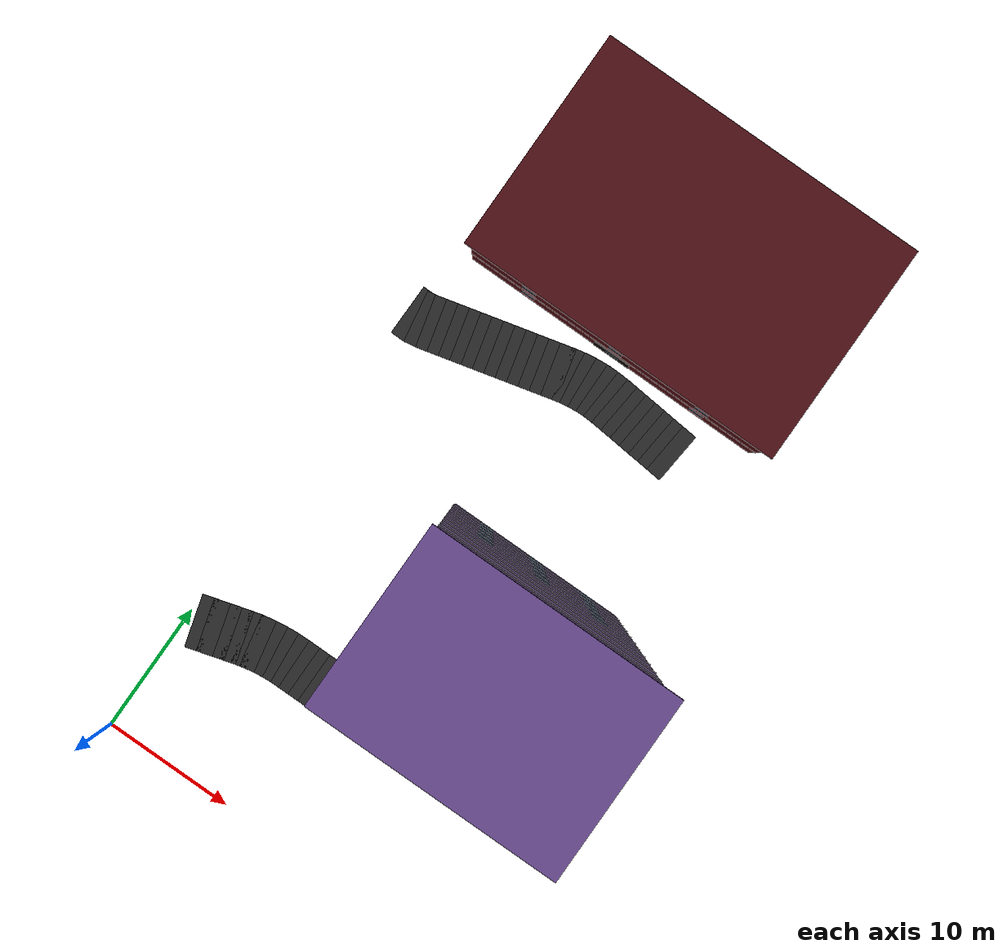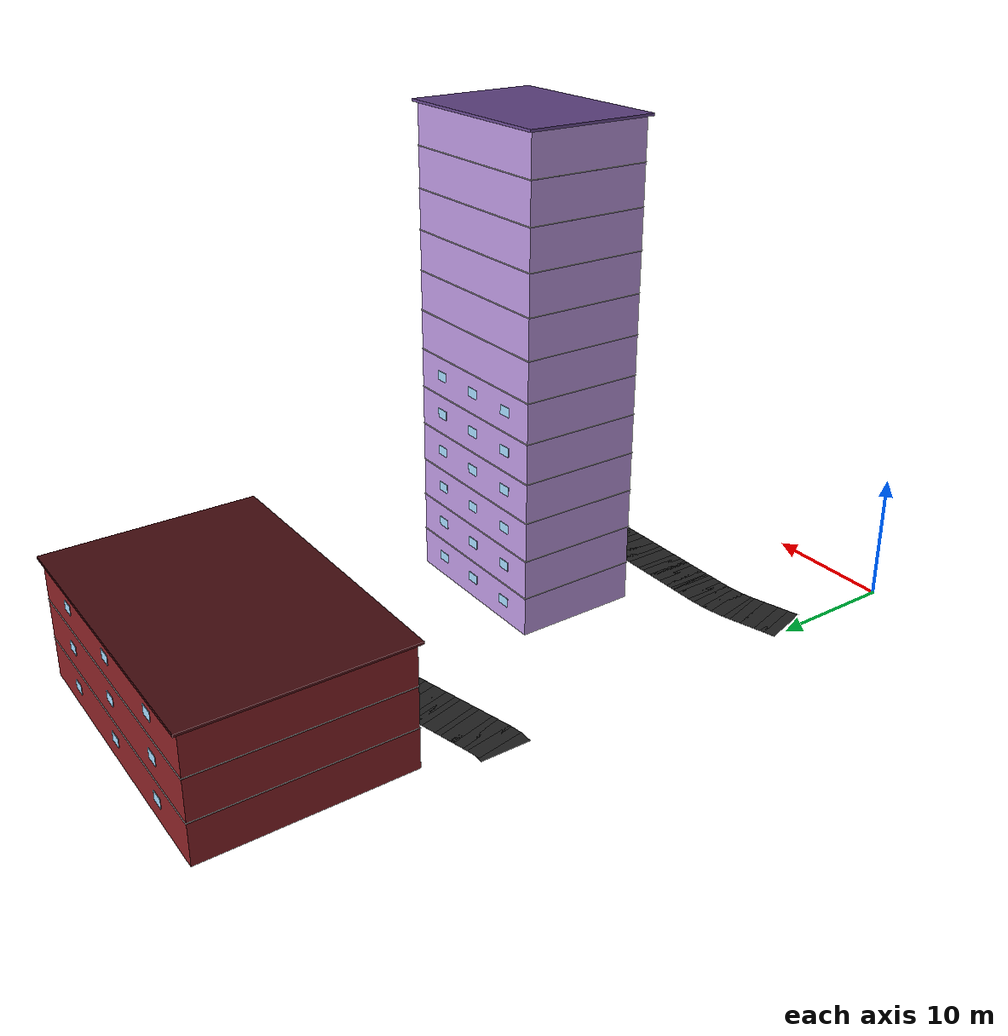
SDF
<sdf version="1.7">
 <world name="campus_delivery">
  <model name="campus_roads">
   <static>true</static>
   <link name="north_campus_loop_0150">
    <pose>21.571 38.790 0.002 0 0 3.048116</pose>
    <visual name="visual">
     <geometry><box><size>1.212 4.000 0.004</size></box></geometry>
     <material><ambient>0.160 0.160 0.160 1.000</ambient><diffuse>0.160 0.160 0.160 1.000</diffuse></material>
    </visual>
   </link>
   <link name="north_campus_loop_0151">
    <pose>20.712 38.871 0.002 0 0 3.048116</pose>
    <visual name="visual">
     <geometry><box><size>1.212 4.000 0.004</size></box></geometry>
     <material><ambient>0.160 0.160 0.160 1.000</ambient><diffuse>0.160 0.160 0.160 1.000</diffuse></material>
    </visual>
   </link>
   <link name="north_campus_loop_0152">
    <pose>19.854 38.951 0.002 0 0 3.048116</pose>
    <visual name="visual">
     <geometry><box><size>1.212 4.000 0.004</size></box></geometry>
     <material><ambient>0.160 0.160 0.160 1.000</ambient><diffuse>0.160 0.160 0.160 1.000</diffuse></material>
    </visual>
   </link>
   <link name="north_campus_loop_0153">
    <pose>18.996 39.032 0.002 0 0 3.048116</pose>
    <visual name="visual">
     <geometry><box><size>1.212 4.000 0.004</size></box></geometry>
     <material><ambient>0.160 0.160 0.160 1.000</ambient><diffuse>0.160 0.160 0.160 1.000</diffuse></material>
    </visual>
   </link>
   <link name="north_campus_loop_0154">
    <pose>18.137 39.112 0.002 0 0 3.048116</pose>
    <visual name="visual">
     <geometry><box><size>1.212 4.000 0.004</size></box></geometry>
     <material><ambient>0.160 0.160 0.160 1.000</ambient><diffuse>0.160 0.160 0.160 1.000</diffuse></material>
    </visual>
   </link>
   <link name="north_campus_loop_0155">
    <pose>17.279 39.193 0.002 0 0 3.048116</pose>
    <visual name="visual">
     <geometry><box><size>1.212 4.000 0.004</size></box></geometry>
     <material><ambient>0.160 0.160 0.160 1.000</ambient><diffuse>0.160 0.160 0.160 1.000</diffuse></material>
    </visual>
   </link>
   <link name="north_campus_loop_0156">
    <pose>16.420 39.273 0.002 0 0 3.048116</pose>
    <visual name="visual">
     <geometry><box><size>1.212 4.000 0.004</size></box></geometry>
     <material><ambient>0.160 0.160 0.160 1.000</ambient><diffuse>0.160 0.160 0.160 1.000</diffuse></material>
    </visual>
   </link>
   <link name="north_campus_loop_0157">
    <pose>15.594 39.337 0.002 0 0 3.081496</pose>
    <visual name="visual">
     <geometry><box><size>1.146 4.000 0.004</size></box></geometry>
     <material><ambient>0.160 0.160 0.160 1.000</ambient><diffuse>0.160 0.160 0.160 1.000</diffuse></material>
    </visual>
   </link>
   <link name="north_campus_loop_0158">
    <pose>14.802 39.358 0.002 0 0 -3.134080</pose>
    <visual name="visual">
     <geometry><box><size>1.140 4.000 0.004</size></box></geometry>
     <material><ambient>0.160 0.160 0.160 1.000</ambient><diffuse>0.160 0.160 0.160 1.000</diffuse></material>
    </visual>
   </link>
   <link name="north_campus_loop_0159">
    <pose>14.013 39.325 0.002 0 0 -3.065842</pose>
    <visual name="visual">
     <geometry><box><size>1.139 4.000 0.004</size></box></geometry>
     <material><ambient>0.160 0.160 0.160 1.000</ambient><diffuse>0.160 0.160 0.160 1.000</diffuse></material>
    </visual>
   </link>
   <link name="north_campus_loop_0160">
    <pose>13.229 39.239 0.002 0 0 -2.997603</pose>
    <visual name="visual">
     <geometry><box><size>1.140 4.000 0.004</size></box></geometry>
     <material><ambient>0.160 0.160 0.160 1.000</ambient><diffuse>0.160 0.160 0.160 1.000</diffuse></material>
    </visual>
   </link>
   <link name="north_campus_loop_0161">
    <pose>12.449 39.099 0.002 0 0 -2.929994</pose>
    <visual name="visual">
     <geometry><box><size>1.146 4.000 0.004</size></box></geometry>
     <material><ambient>0.160 0.160 0.160 1.000</ambient><diffuse>0.160 0.160 0.160 1.000</diffuse></material>
    </visual>
   </link>
   <link name="north_campus_loop_0162">
    <pose>11.638 38.910 0.002 0 0 -2.896614</pose>
    <visual name="visual">
     <geometry><box><size>1.219 4.000 0.004</size></box></geometry>
     <material><ambient>0.160 0.160 0.160 1.000</ambient><diffuse>0.160 0.160 0.160 1.000</diffuse></material>
    </visual>
   </link>
   <link name="north_campus_loop_0163">
    <pose>10.795 38.699 0.002 0 0 -2.896614</pose>
    <visual name="visual">
     <geometry><box><size>1.219 4.000 0.004</size></box></geometry>
     <material><ambient>0.160 0.160 0.160 1.000</ambient><diffuse>0.160 0.160 0.160 1.000</diffuse></material>
    </visual>
   </link>
   <link name="north_campus_loop_0164">
    <pose>9.952 38.488 0.002 0 0 -2.896614</pose>
    <visual name="visual">
     <geometry><box><size>1.219 4.000 0.004</size></box></geometry>
     <material><ambient>0.160 0.160 0.160 1.000</ambient><diffuse>0.160 0.160 0.160 1.000</diffuse></material>
    </visual>
   </link>
   <link name="north_campus_loop_0165">
    <pose>9.108 38.277 0.002 0 0 -2.896614</pose>
    <visual name="visual">
     <geometry><box><size>1.219 4.000 0.004</size></box></geometry>
     <material><ambient>0.160 0.160 0.160 1.000</ambient><diffuse>0.160 0.160 0.160 1.000</diffuse></material>
    </visual>
   </link>
   <link name="north_campus_loop_0166">
    <pose>8.265 38.066 0.002 0 0 -2.896614</pose>
    <visual name="visual">
     <geometry><box><size>1.219 4.000 0.004</size></box></geometry>
     <material><ambient>0.160 0.160 0.160 1.000</ambient><diffuse>0.160 0.160 0.160 1.000</diffuse></material>
    </visual>
   </link>
   <link name="north_campus_loop_0167">
    <pose>7.422 37.855 0.002 0 0 -2.896614</pose>
    <visual name="visual">
     <geometry><box><size>1.219 4.000 0.004</size></box></geometry>
     <material><ambient>0.160 0.160 0.160 1.000</ambient><diffuse>0.160 0.160 0.160 1.000</diffuse></material>
    </visual>
   </link>
   <link name="north_campus_loop_0168">
    <pose>6.578 37.645 0.002 0 0 -2.896614</pose>
    <visual name="visual">
     <geometry><box><size>1.219 4.000 0.004</size></box></geometry>
     <material><ambient>0.160 0.160 0.160 1.000</ambient><diffuse>0.160 0.160 0.160 1.000</diffuse></material>
    </visual>
   </link>
   <link name="north_campus_loop_0169">
    <pose>5.735 37.434 0.002 0 0 -2.896614</pose>
    <visual name="visual">
     <geometry><box><size>1.219 4.000 0.004</size></box></geometry>
     <material><ambient>0.160 0.160 0.160 1.000</ambient><diffuse>0.160 0.160 0.160 1.000</diffuse></material>
    </visual>
   </link>
   <link name="north_campus_loop_0170">
    <pose>4.892 37.223 0.002 0 0 -2.896614</pose>
    <visual name="visual">
     <geometry><box><size>1.219 4.000 0.004</size></box></geometry>
     <material><ambient>0.160 0.160 0.160 1.000</ambient><diffuse>0.160 0.160 0.160 1.000</diffuse></material>
    </visual>
   </link>
   <link name="north_campus_loop_0171">
    <pose>4.048 37.012 0.002 0 0 -2.896614</pose>
    <visual name="visual">
     <geometry><box><size>1.219 4.000 0.004</size></box></geometry>
     <material><ambient>0.160 0.160 0.160 1.000</ambient><diffuse>0.160 0.160 0.160 1.000</diffuse></material>
    </visual>
   </link>
   <link name="north_campus_loop_0172">
    <pose>3.205 36.801 0.002 0 0 -2.896614</pose>
    <visual name="visual">
     <geometry><box><size>1.219 4.000 0.004</size></box></geometry>
     <material><ambient>0.160 0.160 0.160 1.000</ambient><diffuse>0.160 0.160 0.160 1.000</diffuse></material>
    </visual>
   </link>
   <link name="north_campus_loop_0173">
    <pose>2.362 36.590 0.002 0 0 -2.896614</pose>
    <visual name="visual">
     <geometry><box><size>1.219 4.000 0.004</size></box></geometry>
     <material><ambient>0.160 0.160 0.160 1.000</ambient><diffuse>0.160 0.160 0.160 1.000</diffuse></material>
    </visual>
   </link>
   <link name="north_campus_loop_0174">
    <pose>1.559 36.422 0.002 0 0 -2.977029</pose>
    <visual name="visual">
     <geometry><box><size>1.123 4.000 0.004</size></box></geometry>
     <material><ambient>0.160 0.160 0.160 1.000</ambient><diffuse>0.160 0.160 0.160 1.000</diffuse></material>
    </visual>
   </link>
   <link name="north_campus_loop_0175">
    <pose>0.810 36.363 0.002 0 0 3.130468</pose>
    <visual name="visual">
     <geometry><box><size>1.085 4.000 0.004</size></box></geometry>
     <material><ambient>0.160 0.160 0.160 1.000</ambient><diffuse>0.160 0.160 0.160 1.000</diffuse></material>
    </visual>
   </link>
   <link name="north_campus_loop_0352">
    <pose>1.115 9.604 0.002 0 0 0.278300</pose>
    <visual name="visual">
     <geometry><box><size>1.230 4.000 0.004</size></box></geometry>
     <material><ambient>0.160 0.160 0.160 1.000</ambient><diffuse>0.160 0.160 0.160 1.000</diffuse></material>
    </visual>
   </link>
   <link name="north_campus_loop_0353">
    <pose>1.962 9.846 0.002 0 0 0.278300</pose>
    <visual name="visual">
     <geometry><box><size>1.230 4.000 0.004</size></box></geometry>
     <material><ambient>0.160 0.160 0.160 1.000</ambient><diffuse>0.160 0.160 0.160 1.000</diffuse></material>
    </visual>
   </link>
   <link name="north_campus_loop_0354">
    <pose>2.808 10.088 0.002 0 0 0.278300</pose>
    <visual name="visual">
     <geometry><box><size>1.230 4.000 0.004</size></box></geometry>
     <material><ambient>0.160 0.160 0.160 1.000</ambient><diffuse>0.160 0.160 0.160 1.000</diffuse></material>
    </visual>
   </link>
   <link name="north_campus_loop_0355">
    <pose>3.654 10.330 0.002 0 0 0.278300</pose>
    <visual name="visual">
     <geometry><box><size>1.230 4.000 0.004</size></box></geometry>
     <material><ambient>0.160 0.160 0.160 1.000</ambient><diffuse>0.160 0.160 0.160 1.000</diffuse></material>
    </visual>
   </link>
   <link name="north_campus_loop_0356">
    <pose>4.463 10.549 0.002 0 0 0.250728</pose>
    <visual name="visual">
     <geometry><box><size>1.147 4.000 0.004</size></box></geometry>
     <material><ambient>0.160 0.160 0.160 1.000</ambient><diffuse>0.160 0.160 0.160 1.000</diffuse></material>
    </visual>
   </link>
   <link name="north_campus_loop_0357">
    <pose>5.238 10.725 0.002 0 0 0.195113</pose>
    <visual name="visual">
     <geometry><box><size>1.144 4.000 0.004</size></box></geometry>
     <material><ambient>0.160 0.160 0.160 1.000</ambient><diffuse>0.160 0.160 0.160 1.000</diffuse></material>
    </visual>
   </link>
   <link name="north_campus_loop_0358">
    <pose>6.020 10.857 0.002 0 0 0.139150</pose>
    <visual name="visual">
     <geometry><box><size>1.142 4.000 0.004</size></box></geometry>
     <material><ambient>0.160 0.160 0.160 1.000</ambient><diffuse>0.160 0.160 0.160 1.000</diffuse></material>
    </visual>
   </link>
   <link name="north_campus_loop_0359">
    <pose>6.808 10.945 0.002 0 0 0.083186</pose>
    <visual name="visual">
     <geometry><box><size>1.144 4.000 0.004</size></box></geometry>
     <material><ambient>0.160 0.160 0.160 1.000</ambient><diffuse>0.160 0.160 0.160 1.000</diffuse></material>
    </visual>
   </link>
   <link name="north_campus_loop_0360">
    <pose>7.602 10.989 0.002 0 0 0.027571</pose>
    <visual name="visual">
     <geometry><box><size>1.147 4.000 0.004</size></box></geometry>
     <material><ambient>0.160 0.160 0.160 1.000</ambient><diffuse>0.160 0.160 0.160 1.000</diffuse></material>
    </visual>
   </link>
   <link name="north_campus_loop_0361">
    <pose>8.435 11.000 0.002 0 0 0.000000</pose>
    <visual name="visual">
     <geometry><box><size>1.220 4.000 0.004</size></box></geometry>
     <material><ambient>0.160 0.160 0.160 1.000</ambient><diffuse>0.160 0.160 0.160 1.000</diffuse></material>
    </visual>
   </link>
   <link name="north_campus_loop_0362">
    <pose>9.304 11.000 0.002 0 0 0.000000</pose>
    <visual name="visual">
     <geometry><box><size>1.220 4.000 0.004</size></box></geometry>
     <material><ambient>0.160 0.160 0.160 1.000</ambient><diffuse>0.160 0.160 0.160 1.000</diffuse></material>
    </visual>
   </link>
   <link name="north_campus_loop_0363">
    <pose>10.174 11.000 0.002 0 0 0.000000</pose>
    <visual name="visual">
     <geometry><box><size>1.220 4.000 0.004</size></box></geometry>
     <material><ambient>0.160 0.160 0.160 1.000</ambient><diffuse>0.160 0.160 0.160 1.000</diffuse></material>
    </visual>
   </link>
   <link name="north_campus_loop_0364">
    <pose>11.043 11.000 0.002 0 0 0.000000</pose>
    <visual name="visual">
     <geometry><box><size>1.220 4.000 0.004</size></box></geometry>
     <material><ambient>0.160 0.160 0.160 1.000</ambient><diffuse>0.160 0.160 0.160 1.000</diffuse></material>
    </visual>
   </link>
   <link name="north_campus_loop_0365">
    <pose>11.913 11.000 0.002 0 0 0.000000</pose>
    <visual name="visual">
     <geometry><box><size>1.220 4.000 0.004</size></box></geometry>
     <material><ambient>0.160 0.160 0.160 1.000</ambient><diffuse>0.160 0.160 0.160 1.000</diffuse></material>
    </visual>
   </link>
   <link name="north_campus_loop_0366">
    <pose>12.783 11.000 0.002 0 0 0.000000</pose>
    <visual name="visual">
     <geometry><box><size>1.220 4.000 0.004</size></box></geometry>
     <material><ambient>0.160 0.160 0.160 1.000</ambient><diffuse>0.160 0.160 0.160 1.000</diffuse></material>
    </visual>
   </link>
   <link name="north_campus_loop_0367">
    <pose>13.652 11.000 0.002 0 0 0.000000</pose>
    <visual name="visual">
     <geometry><box><size>1.220 4.000 0.004</size></box></geometry>
     <material><ambient>0.160 0.160 0.160 1.000</ambient><diffuse>0.160 0.160 0.160 1.000</diffuse></material>
    </visual>
   </link>
   <link name="north_campus_loop_0368">
    <pose>14.522 11.000 0.002 0 0 0.000000</pose>
    <visual name="visual">
     <geometry><box><size>1.220 4.000 0.004</size></box></geometry>
     <material><ambient>0.160 0.160 0.160 1.000</ambient><diffuse>0.160 0.160 0.160 1.000</diffuse></material>
    </visual>
   </link>
   <link name="north_campus_loop_0369">
    <pose>15.391 11.000 0.002 0 0 0.000000</pose>
    <visual name="visual">
     <geometry><box><size>1.220 4.000 0.004</size></box></geometry>
     <material><ambient>0.160 0.160 0.160 1.000</ambient><diffuse>0.160 0.160 0.160 1.000</diffuse></material>
    </visual>
   </link>
   <link name="north_campus_loop_0370">
    <pose>16.261 11.000 0.002 0 0 0.000000</pose>
    <visual name="visual">
     <geometry><box><size>1.220 4.000 0.004</size></box></geometry>
     <material><ambient>0.160 0.160 0.160 1.000</ambient><diffuse>0.160 0.160 0.160 1.000</diffuse></material>
    </visual>
   </link>
   <link name="north_campus_loop_0371">
    <pose>17.130 11.000 0.002 0 0 0.000000</pose>
    <visual name="visual">
     <geometry><box><size>1.220 4.000 0.004</size></box></geometry>
     <material><ambient>0.160 0.160 0.160 1.000</ambient><diffuse>0.160 0.160 0.160 1.000</diffuse></material>
    </visual>
   </link>
   <link name="north_campus_loop_0372">
    <pose>18.000 11.000 0.002 0 0 0.000000</pose>
    <visual name="visual">
     <geometry><box><size>1.220 4.000 0.004</size></box></geometry>
     <material><ambient>0.160 0.160 0.160 1.000</ambient><diffuse>0.160 0.160 0.160 1.000</diffuse></material>
    </visual>
   </link>
   <link name="north_campus_loop_0373">
    <pose>18.870 11.000 0.002 0 0 0.000000</pose>
    <visual name="visual">
     <geometry><box><size>1.220 4.000 0.004</size></box></geometry>
     <material><ambient>0.160 0.160 0.160 1.000</ambient><diffuse>0.160 0.160 0.160 1.000</diffuse></material>
    </visual>
   </link>
   <link name="north_campus_loop_0374">
    <pose>19.739 11.000 0.002 0 0 0.000000</pose>
    <visual name="visual">
     <geometry><box><size>1.220 4.000 0.004</size></box></geometry>
     <material><ambient>0.160 0.160 0.160 1.000</ambient><diffuse>0.160 0.160 0.160 1.000</diffuse></material>
    </visual>
   </link>
   <link name="north_campus_loop_0375">
    <pose>20.609 11.000 0.002 0 0 0.000000</pose>
    <visual name="visual">
     <geometry><box><size>1.220 4.000 0.004</size></box></geometry>
     <material><ambient>0.160 0.160 0.160 1.000</ambient><diffuse>0.160 0.160 0.160 1.000</diffuse></material>
    </visual>
   </link>
   <link name="north_campus_loop_0376">
    <pose>21.478 11.000 0.002 0 0 0.000000</pose>
    <visual name="visual">
     <geometry><box><size>1.220 4.000 0.004</size></box></geometry>
     <material><ambient>0.160 0.160 0.160 1.000</ambient><diffuse>0.160 0.160 0.160 1.000</diffuse></material>
    </visual>
   </link>
  </model>
  <model name="dormitory_3">
   <static>true</static>
   <pose>18.000 22.000 0 0 0 0</pose>
   <link name="body">
    <visual name="body">
     <pose>0 0 19.200 0 0 0</pose>
     <geometry><box><size>14.000 10.000 38.400</size></box></geometry>
     <material><ambient>0.720 0.580 0.860 1.000</ambient><diffuse>0.720 0.580 0.860 1.000</diffuse></material>
    </visual>
    <collision name="body_collision">
     <pose>0 0 19.200 0 0 0</pose>
     <geometry><box><size>14.000 10.000 38.400</size></box></geometry>
    </collision>
    <visual name="roof">
     <pose>0 0 38.500 0 0 0</pose>
     <geometry><box><size>14.600 10.600 0.200</size></box></geometry>
     <material><ambient>0.400 0.280 0.550 1.000</ambient><diffuse>0.400 0.280 0.550 1.000</diffuse></material>
    </visual>
    <visual name="floor_sep_n_1">
     <pose>0 5.018 3.200 0 0 0</pose>
     <geometry><box><size>14.100 0.035 0.060</size></box></geometry>
     <material><ambient>0.080 0.080 0.080 1.000</ambient><diffuse>0.080 0.080 0.080 1.000</diffuse></material>
    </visual>
    <visual name="floor_sep_s_1">
     <pose>0 -5.018 3.200 0 0 0</pose>
     <geometry><box><size>14.100 0.035 0.060</size></box></geometry>
     <material><ambient>0.080 0.080 0.080 1.000</ambient><diffuse>0.080 0.080 0.080 1.000</diffuse></material>
    </visual>
    <visual name="floor_sep_e_1">
     <pose>7.018 0 3.200 0 0 0</pose>
     <geometry><box><size>0.035 10.100 0.060</size></box></geometry>
     <material><ambient>0.080 0.080 0.080 1.000</ambient><diffuse>0.080 0.080 0.080 1.000</diffuse></material>
    </visual>
    <visual name="floor_sep_w_1">
     <pose>-7.018 0 3.200 0 0 0</pose>
     <geometry><box><size>0.035 10.100 0.060</size></box></geometry>
     <material><ambient>0.080 0.080 0.080 1.000</ambient><diffuse>0.080 0.080 0.080 1.000</diffuse></material>
    </visual>
    <visual name="floor_sep_n_2">
     <pose>0 5.018 6.400 0 0 0</pose>
     <geometry><box><size>14.100 0.035 0.060</size></box></geometry>
     <material><ambient>0.080 0.080 0.080 1.000</ambient><diffuse>0.080 0.080 0.080 1.000</diffuse></material>
    </visual>
    <visual name="floor_sep_s_2">
     <pose>0 -5.018 6.400 0 0 0</pose>
     <geometry><box><size>14.100 0.035 0.060</size></box></geometry>
     <material><ambient>0.080 0.080 0.080 1.000</ambient><diffuse>0.080 0.080 0.080 1.000</diffuse></material>
    </visual>
    <visual name="floor_sep_e_2">
     <pose>7.018 0 6.400 0 0 0</pose>
     <geometry><box><size>0.035 10.100 0.060</size></box></geometry>
     <material><ambient>0.080 0.080 0.080 1.000</ambient><diffuse>0.080 0.080 0.080 1.000</diffuse></material>
    </visual>
    <visual name="floor_sep_w_2">
     <pose>-7.018 0 6.400 0 0 0</pose>
     <geometry><box><size>0.035 10.100 0.060</size></box></geometry>
     <material><ambient>0.080 0.080 0.080 1.000</ambient><diffuse>0.080 0.080 0.080 1.000</diffuse></material>
    </visual>
    <visual name="floor_sep_n_3">
     <pose>0 5.018 9.600 0 0 0</pose>
     <geometry><box><size>14.100 0.035 0.060</size></box></geometry>
     <material><ambient>0.080 0.080 0.080 1.000</ambient><diffuse>0.080 0.080 0.080 1.000</diffuse></material>
    </visual>
    <visual name="floor_sep_s_3">
     <pose>0 -5.018 9.600 0 0 0</pose>
     <geometry><box><size>14.100 0.035 0.060</size></box></geometry>
     <material><ambient>0.080 0.080 0.080 1.000</ambient><diffuse>0.080 0.080 0.080 1.000</diffuse></material>
    </visual>
    <visual name="floor_sep_e_3">
     <pose>7.018 0 9.600 0 0 0</pose>
     <geometry><box><size>0.035 10.100 0.060</size></box></geometry>
     <material><ambient>0.080 0.080 0.080 1.000</ambient><diffuse>0.080 0.080 0.080 1.000</diffuse></material>
    </visual>
    <visual name="floor_sep_w_3">
     <pose>-7.018 0 9.600 0 0 0</pose>
     <geometry><box><size>0.035 10.100 0.060</size></box></geometry>
     <material><ambient>0.080 0.080 0.080 1.000</ambient><diffuse>0.080 0.080 0.080 1.000</diffuse></material>
    </visual>
    <visual name="floor_sep_n_4">
     <pose>0 5.018 12.800 0 0 0</pose>
     <geometry><box><size>14.100 0.035 0.060</size></box></geometry>
     <material><ambient>0.080 0.080 0.080 1.000</ambient><diffuse>0.080 0.080 0.080 1.000</diffuse></material>
    </visual>
    <visual name="floor_sep_s_4">
     <pose>0 -5.018 12.800 0 0 0</pose>
     <geometry><box><size>14.100 0.035 0.060</size></box></geometry>
     <material><ambient>0.080 0.080 0.080 1.000</ambient><diffuse>0.080 0.080 0.080 1.000</diffuse></material>
    </visual>
    <visual name="floor_sep_e_4">
     <pose>7.018 0 12.800 0 0 0</pose>
     <geometry><box><size>0.035 10.100 0.060</size></box></geometry>
     <material><ambient>0.080 0.080 0.080 1.000</ambient><diffuse>0.080 0.080 0.080 1.000</diffuse></material>
    </visual>
    <visual name="floor_sep_w_4">
     <pose>-7.018 0 12.800 0 0 0</pose>
     <geometry><box><size>0.035 10.100 0.060</size></box></geometry>
     <material><ambient>0.080 0.080 0.080 1.000</ambient><diffuse>0.080 0.080 0.080 1.000</diffuse></material>
    </visual>
    <visual name="floor_sep_n_5">
     <pose>0 5.018 16.000 0 0 0</pose>
     <geometry><box><size>14.100 0.035 0.060</size></box></geometry>
     <material><ambient>0.080 0.080 0.080 1.000</ambient><diffuse>0.080 0.080 0.080 1.000</diffuse></material>
    </visual>
    <visual name="floor_sep_s_5">
     <pose>0 -5.018 16.000 0 0 0</pose>
     <geometry><box><size>14.100 0.035 0.060</size></box></geometry>
     <material><ambient>0.080 0.080 0.080 1.000</ambient><diffuse>0.080 0.080 0.080 1.000</diffuse></material>
    </visual>
    <visual name="floor_sep_e_5">
     <pose>7.018 0 16.000 0 0 0</pose>
     <geometry><box><size>0.035 10.100 0.060</size></box></geometry>
     <material><ambient>0.080 0.080 0.080 1.000</ambient><diffuse>0.080 0.080 0.080 1.000</diffuse></material>
    </visual>
    <visual name="floor_sep_w_5">
     <pose>-7.018 0 16.000 0 0 0</pose>
     <geometry><box><size>0.035 10.100 0.060</size></box></geometry>
     <material><ambient>0.080 0.080 0.080 1.000</ambient><diffuse>0.080 0.080 0.080 1.000</diffuse></material>
    </visual>
    <visual name="floor_sep_n_6">
     <pose>0 5.018 19.200 0 0 0</pose>
     <geometry><box><size>14.100 0.035 0.060</size></box></geometry>
     <material><ambient>0.080 0.080 0.080 1.000</ambient><diffuse>0.080 0.080 0.080 1.000</diffuse></material>
    </visual>
    <visual name="floor_sep_s_6">
     <pose>0 -5.018 19.200 0 0 0</pose>
     <geometry><box><size>14.100 0.035 0.060</size></box></geometry>
     <material><ambient>0.080 0.080 0.080 1.000</ambient><diffuse>0.080 0.080 0.080 1.000</diffuse></material>
    </visual>
    <visual name="floor_sep_e_6">
     <pose>7.018 0 19.200 0 0 0</pose>
     <geometry><box><size>0.035 10.100 0.060</size></box></geometry>
     <material><ambient>0.080 0.080 0.080 1.000</ambient><diffuse>0.080 0.080 0.080 1.000</diffuse></material>
    </visual>
    <visual name="floor_sep_w_6">
     <pose>-7.018 0 19.200 0 0 0</pose>
     <geometry><box><size>0.035 10.100 0.060</size></box></geometry>
     <material><ambient>0.080 0.080 0.080 1.000</ambient><diffuse>0.080 0.080 0.080 1.000</diffuse></material>
    </visual>
    <visual name="floor_sep_n_7">
     <pose>0 5.018 22.400 0 0 0</pose>
     <geometry><box><size>14.100 0.035 0.060</size></box></geometry>
     <material><ambient>0.080 0.080 0.080 1.000</ambient><diffuse>0.080 0.080 0.080 1.000</diffuse></material>
    </visual>
    <visual name="floor_sep_s_7">
     <pose>0 -5.018 22.400 0 0 0</pose>
     <geometry><box><size>14.100 0.035 0.060</size></box></geometry>
     <material><ambient>0.080 0.080 0.080 1.000</ambient><diffuse>0.080 0.080 0.080 1.000</diffuse></material>
    </visual>
    <visual name="floor_sep_e_7">
     <pose>7.018 0 22.400 0 0 0</pose>
     <geometry><box><size>0.035 10.100 0.060</size></box></geometry>
     <material><ambient>0.080 0.080 0.080 1.000</ambient><diffuse>0.080 0.080 0.080 1.000</diffuse></material>
    </visual>
    <visual name="floor_sep_w_7">
     <pose>-7.018 0 22.400 0 0 0</pose>
     <geometry><box><size>0.035 10.100 0.060</size></box></geometry>
     <material><ambient>0.080 0.080 0.080 1.000</ambient><diffuse>0.080 0.080 0.080 1.000</diffuse></material>
    </visual>
    <visual name="floor_sep_n_8">
     <pose>0 5.018 25.600 0 0 0</pose>
     <geometry><box><size>14.100 0.035 0.060</size></box></geometry>
     <material><ambient>0.080 0.080 0.080 1.000</ambient><diffuse>0.080 0.080 0.080 1.000</diffuse></material>
    </visual>
    <visual name="floor_sep_s_8">
     <pose>0 -5.018 25.600 0 0 0</pose>
     <geometry><box><size>14.100 0.035 0.060</size></box></geometry>
     <material><ambient>0.080 0.080 0.080 1.000</ambient><diffuse>0.080 0.080 0.080 1.000</diffuse></material>
    </visual>
    <visual name="floor_sep_e_8">
     <pose>7.018 0 25.600 0 0 0</pose>
     <geometry><box><size>0.035 10.100 0.060</size></box></geometry>
     <material><ambient>0.080 0.080 0.080 1.000</ambient><diffuse>0.080 0.080 0.080 1.000</diffuse></material>
    </visual>
    <visual name="floor_sep_w_8">
     <pose>-7.018 0 25.600 0 0 0</pose>
     <geometry><box><size>0.035 10.100 0.060</size></box></geometry>
     <material><ambient>0.080 0.080 0.080 1.000</ambient><diffuse>0.080 0.080 0.080 1.000</diffuse></material>
    </visual>
    <visual name="floor_sep_n_9">
     <pose>0 5.018 28.800 0 0 0</pose>
     <geometry><box><size>14.100 0.035 0.060</size></box></geometry>
     <material><ambient>0.080 0.080 0.080 1.000</ambient><diffuse>0.080 0.080 0.080 1.000</diffuse></material>
    </visual>
    <visual name="floor_sep_s_9">
     <pose>0 -5.018 28.800 0 0 0</pose>
     <geometry><box><size>14.100 0.035 0.060</size></box></geometry>
     <material><ambient>0.080 0.080 0.080 1.000</ambient><diffuse>0.080 0.080 0.080 1.000</diffuse></material>
    </visual>
    <visual name="floor_sep_e_9">
     <pose>7.018 0 28.800 0 0 0</pose>
     <geometry><box><size>0.035 10.100 0.060</size></box></geometry>
     <material><ambient>0.080 0.080 0.080 1.000</ambient><diffuse>0.080 0.080 0.080 1.000</diffuse></material>
    </visual>
    <visual name="floor_sep_w_9">
     <pose>-7.018 0 28.800 0 0 0</pose>
     <geometry><box><size>0.035 10.100 0.060</size></box></geometry>
     <material><ambient>0.080 0.080 0.080 1.000</ambient><diffuse>0.080 0.080 0.080 1.000</diffuse></material>
    </visual>
    <visual name="floor_sep_n_10">
     <pose>0 5.018 32.000 0 0 0</pose>
     <geometry><box><size>14.100 0.035 0.060</size></box></geometry>
     <material><ambient>0.080 0.080 0.080 1.000</ambient><diffuse>0.080 0.080 0.080 1.000</diffuse></material>
    </visual>
    <visual name="floor_sep_s_10">
     <pose>0 -5.018 32.000 0 0 0</pose>
     <geometry><box><size>14.100 0.035 0.060</size></box></geometry>
     <material><ambient>0.080 0.080 0.080 1.000</ambient><diffuse>0.080 0.080 0.080 1.000</diffuse></material>
    </visual>
    <visual name="floor_sep_e_10">
     <pose>7.018 0 32.000 0 0 0</pose>
     <geometry><box><size>0.035 10.100 0.060</size></box></geometry>
     <material><ambient>0.080 0.080 0.080 1.000</ambient><diffuse>0.080 0.080 0.080 1.000</diffuse></material>
    </visual>
    <visual name="floor_sep_w_10">
     <pose>-7.018 0 32.000 0 0 0</pose>
     <geometry><box><size>0.035 10.100 0.060</size></box></geometry>
     <material><ambient>0.080 0.080 0.080 1.000</ambient><diffuse>0.080 0.080 0.080 1.000</diffuse></material>
    </visual>
    <visual name="floor_sep_n_11">
     <pose>0 5.018 35.200 0 0 0</pose>
     <geometry><box><size>14.100 0.035 0.060</size></box></geometry>
     <material><ambient>0.080 0.080 0.080 1.000</ambient><diffuse>0.080 0.080 0.080 1.000</diffuse></material>
    </visual>
    <visual name="floor_sep_s_11">
     <pose>0 -5.018 35.200 0 0 0</pose>
     <geometry><box><size>14.100 0.035 0.060</size></box></geometry>
     <material><ambient>0.080 0.080 0.080 1.000</ambient><diffuse>0.080 0.080 0.080 1.000</diffuse></material>
    </visual>
    <visual name="floor_sep_e_11">
     <pose>7.018 0 35.200 0 0 0</pose>
     <geometry><box><size>0.035 10.100 0.060</size></box></geometry>
     <material><ambient>0.080 0.080 0.080 1.000</ambient><diffuse>0.080 0.080 0.080 1.000</diffuse></material>
    </visual>
    <visual name="floor_sep_w_11">
     <pose>-7.018 0 35.200 0 0 0</pose>
     <geometry><box><size>0.035 10.100 0.060</size></box></geometry>
     <material><ambient>0.080 0.080 0.080 1.000</ambient><diffuse>0.080 0.080 0.080 1.000</diffuse></material>
    </visual>
    <visual name="front_door">
     <pose>0 -5.012 1.2 0 0 0</pose>
     <geometry><box><size>3.000 0.050 2.400</size></box></geometry>
     <material><ambient>0.080 0.060 0.040 1.000</ambient><diffuse>0.080 0.060 0.040 1.000</diffuse></material>
    </visual>
    <visual name="win_n_1_-4.2">
     <pose>-4.200 5.020 1.700 0 0 0</pose>
     <geometry><box><size>1.100 0.035 0.750</size></box></geometry>
     <material><ambient>0.620 0.820 0.950 1.000</ambient><diffuse>0.620 0.820 0.950 1.000</diffuse></material>
    </visual>
    <visual name="win_s_1_-4.2">
     <pose>-4.200 -5.020 1.700 0 0 0</pose>
     <geometry><box><size>1.100 0.035 0.750</size></box></geometry>
     <material><ambient>0.620 0.820 0.950 1.000</ambient><diffuse>0.620 0.820 0.950 1.000</diffuse></material>
    </visual>
    <visual name="win_n_1_0.0">
     <pose>0.000 5.020 1.700 0 0 0</pose>
     <geometry><box><size>1.100 0.035 0.750</size></box></geometry>
     <material><ambient>0.620 0.820 0.950 1.000</ambient><diffuse>0.620 0.820 0.950 1.000</diffuse></material>
    </visual>
    <visual name="win_s_1_0.0">
     <pose>0.000 -5.020 1.700 0 0 0</pose>
     <geometry><box><size>1.100 0.035 0.750</size></box></geometry>
     <material><ambient>0.620 0.820 0.950 1.000</ambient><diffuse>0.620 0.820 0.950 1.000</diffuse></material>
    </visual>
    <visual name="win_n_1_4.2">
     <pose>4.200 5.020 1.700 0 0 0</pose>
     <geometry><box><size>1.100 0.035 0.750</size></box></geometry>
     <material><ambient>0.620 0.820 0.950 1.000</ambient><diffuse>0.620 0.820 0.950 1.000</diffuse></material>
    </visual>
    <visual name="win_s_1_4.2">
     <pose>4.200 -5.020 1.700 0 0 0</pose>
     <geometry><box><size>1.100 0.035 0.750</size></box></geometry>
     <material><ambient>0.620 0.820 0.950 1.000</ambient><diffuse>0.620 0.820 0.950 1.000</diffuse></material>
    </visual>
    <visual name="win_n_2_-4.2">
     <pose>-4.200 5.020 4.900 0 0 0</pose>
     <geometry><box><size>1.100 0.035 0.750</size></box></geometry>
     <material><ambient>0.620 0.820 0.950 1.000</ambient><diffuse>0.620 0.820 0.950 1.000</diffuse></material>
    </visual>
    <visual name="win_s_2_-4.2">
     <pose>-4.200 -5.020 4.900 0 0 0</pose>
     <geometry><box><size>1.100 0.035 0.750</size></box></geometry>
     <material><ambient>0.620 0.820 0.950 1.000</ambient><diffuse>0.620 0.820 0.950 1.000</diffuse></material>
    </visual>
    <visual name="win_n_2_0.0">
     <pose>0.000 5.020 4.900 0 0 0</pose>
     <geometry><box><size>1.100 0.035 0.750</size></box></geometry>
     <material><ambient>0.620 0.820 0.950 1.000</ambient><diffuse>0.620 0.820 0.950 1.000</diffuse></material>
    </visual>
    <visual name="win_s_2_0.0">
     <pose>0.000 -5.020 4.900 0 0 0</pose>
     <geometry><box><size>1.100 0.035 0.750</size></box></geometry>
     <material><ambient>0.620 0.820 0.950 1.000</ambient><diffuse>0.620 0.820 0.950 1.000</diffuse></material>
    </visual>
    <visual name="win_n_2_4.2">
     <pose>4.200 5.020 4.900 0 0 0</pose>
     <geometry><box><size>1.100 0.035 0.750</size></box></geometry>
     <material><ambient>0.620 0.820 0.950 1.000</ambient><diffuse>0.620 0.820 0.950 1.000</diffuse></material>
    </visual>
    <visual name="win_s_2_4.2">
     <pose>4.200 -5.020 4.900 0 0 0</pose>
     <geometry><box><size>1.100 0.035 0.750</size></box></geometry>
     <material><ambient>0.620 0.820 0.950 1.000</ambient><diffuse>0.620 0.820 0.950 1.000</diffuse></material>
    </visual>
    <visual name="win_n_3_-4.2">
     <pose>-4.200 5.020 8.100 0 0 0</pose>
     <geometry><box><size>1.100 0.035 0.750</size></box></geometry>
     <material><ambient>0.620 0.820 0.950 1.000</ambient><diffuse>0.620 0.820 0.950 1.000</diffuse></material>
    </visual>
    <visual name="win_s_3_-4.2">
     <pose>-4.200 -5.020 8.100 0 0 0</pose>
     <geometry><box><size>1.100 0.035 0.750</size></box></geometry>
     <material><ambient>0.620 0.820 0.950 1.000</ambient><diffuse>0.620 0.820 0.950 1.000</diffuse></material>
    </visual>
    <visual name="win_n_3_0.0">
     <pose>0.000 5.020 8.100 0 0 0</pose>
     <geometry><box><size>1.100 0.035 0.750</size></box></geometry>
     <material><ambient>0.620 0.820 0.950 1.000</ambient><diffuse>0.620 0.820 0.950 1.000</diffuse></material>
    </visual>
    <visual name="win_s_3_0.0">
     <pose>0.000 -5.020 8.100 0 0 0</pose>
     <geometry><box><size>1.100 0.035 0.750</size></box></geometry>
     <material><ambient>0.620 0.820 0.950 1.000</ambient><diffuse>0.620 0.820 0.950 1.000</diffuse></material>
    </visual>
    <visual name="win_n_3_4.2">
     <pose>4.200 5.020 8.100 0 0 0</pose>
     <geometry><box><size>1.100 0.035 0.750</size></box></geometry>
     <material><ambient>0.620 0.820 0.950 1.000</ambient><diffuse>0.620 0.820 0.950 1.000</diffuse></material>
    </visual>
    <visual name="win_s_3_4.2">
     <pose>4.200 -5.020 8.100 0 0 0</pose>
     <geometry><box><size>1.100 0.035 0.750</size></box></geometry>
     <material><ambient>0.620 0.820 0.950 1.000</ambient><diffuse>0.620 0.820 0.950 1.000</diffuse></material>
    </visual>
    <visual name="win_n_4_-4.2">
     <pose>-4.200 5.020 11.300 0 0 0</pose>
     <geometry><box><size>1.100 0.035 0.750</size></box></geometry>
     <material><ambient>0.620 0.820 0.950 1.000</ambient><diffuse>0.620 0.820 0.950 1.000</diffuse></material>
    </visual>
    <visual name="win_s_4_-4.2">
     <pose>-4.200 -5.020 11.300 0 0 0</pose>
     <geometry><box><size>1.100 0.035 0.750</size></box></geometry>
     <material><ambient>0.620 0.820 0.950 1.000</ambient><diffuse>0.620 0.820 0.950 1.000</diffuse></material>
    </visual>
    <visual name="win_n_4_0.0">
     <pose>0.000 5.020 11.300 0 0 0</pose>
     <geometry><box><size>1.100 0.035 0.750</size></box></geometry>
     <material><ambient>0.620 0.820 0.950 1.000</ambient><diffuse>0.620 0.820 0.950 1.000</diffuse></material>
    </visual>
    <visual name="win_s_4_0.0">
     <pose>0.000 -5.020 11.300 0 0 0</pose>
     <geometry><box><size>1.100 0.035 0.750</size></box></geometry>
     <material><ambient>0.620 0.820 0.950 1.000</ambient><diffuse>0.620 0.820 0.950 1.000</diffuse></material>
    </visual>
    <visual name="win_n_4_4.2">
     <pose>4.200 5.020 11.300 0 0 0</pose>
     <geometry><box><size>1.100 0.035 0.750</size></box></geometry>
     <material><ambient>0.620 0.820 0.950 1.000</ambient><diffuse>0.620 0.820 0.950 1.000</diffuse></material>
    </visual>
    <visual name="win_s_4_4.2">
     <pose>4.200 -5.020 11.300 0 0 0</pose>
     <geometry><box><size>1.100 0.035 0.750</size></box></geometry>
     <material><ambient>0.620 0.820 0.950 1.000</ambient><diffuse>0.620 0.820 0.950 1.000</diffuse></material>
    </visual>
    <visual name="win_n_5_-4.2">
     <pose>-4.200 5.020 14.500 0 0 0</pose>
     <geometry><box><size>1.100 0.035 0.750</size></box></geometry>
     <material><ambient>0.620 0.820 0.950 1.000</ambient><diffuse>0.620 0.820 0.950 1.000</diffuse></material>
    </visual>
    <visual name="win_s_5_-4.2">
     <pose>-4.200 -5.020 14.500 0 0 0</pose>
     <geometry><box><size>1.100 0.035 0.750</size></box></geometry>
     <material><ambient>0.620 0.820 0.950 1.000</ambient><diffuse>0.620 0.820 0.950 1.000</diffuse></material>
    </visual>
    <visual name="win_n_5_0.0">
     <pose>0.000 5.020 14.500 0 0 0</pose>
     <geometry><box><size>1.100 0.035 0.750</size></box></geometry>
     <material><ambient>0.620 0.820 0.950 1.000</ambient><diffuse>0.620 0.820 0.950 1.000</diffuse></material>
    </visual>
    <visual name="win_s_5_0.0">
     <pose>0.000 -5.020 14.500 0 0 0</pose>
     <geometry><box><size>1.100 0.035 0.750</size></box></geometry>
     <material><ambient>0.620 0.820 0.950 1.000</ambient><diffuse>0.620 0.820 0.950 1.000</diffuse></material>
    </visual>
    <visual name="win_n_5_4.2">
     <pose>4.200 5.020 14.500 0 0 0</pose>
     <geometry><box><size>1.100 0.035 0.750</size></box></geometry>
     <material><ambient>0.620 0.820 0.950 1.000</ambient><diffuse>0.620 0.820 0.950 1.000</diffuse></material>
    </visual>
    <visual name="win_s_5_4.2">
     <pose>4.200 -5.020 14.500 0 0 0</pose>
     <geometry><box><size>1.100 0.035 0.750</size></box></geometry>
     <material><ambient>0.620 0.820 0.950 1.000</ambient><diffuse>0.620 0.820 0.950 1.000</diffuse></material>
    </visual>
    <visual name="win_n_6_-4.2">
     <pose>-4.200 5.020 17.700 0 0 0</pose>
     <geometry><box><size>1.100 0.035 0.750</size></box></geometry>
     <material><ambient>0.620 0.820 0.950 1.000</ambient><diffuse>0.620 0.820 0.950 1.000</diffuse></material>
    </visual>
    <visual name="win_s_6_-4.2">
     <pose>-4.200 -5.020 17.700 0 0 0</pose>
     <geometry><box><size>1.100 0.035 0.750</size></box></geometry>
     <material><ambient>0.620 0.820 0.950 1.000</ambient><diffuse>0.620 0.820 0.950 1.000</diffuse></material>
    </visual>
    <visual name="win_n_6_0.0">
     <pose>0.000 5.020 17.700 0 0 0</pose>
     <geometry><box><size>1.100 0.035 0.750</size></box></geometry>
     <material><ambient>0.620 0.820 0.950 1.000</ambient><diffuse>0.620 0.820 0.950 1.000</diffuse></material>
    </visual>
    <visual name="win_s_6_0.0">
     <pose>0.000 -5.020 17.700 0 0 0</pose>
     <geometry><box><size>1.100 0.035 0.750</size></box></geometry>
     <material><ambient>0.620 0.820 0.950 1.000</ambient><diffuse>0.620 0.820 0.950 1.000</diffuse></material>
    </visual>
    <visual name="win_n_6_4.2">
     <pose>4.200 5.020 17.700 0 0 0</pose>
     <geometry><box><size>1.100 0.035 0.750</size></box></geometry>
     <material><ambient>0.620 0.820 0.950 1.000</ambient><diffuse>0.620 0.820 0.950 1.000</diffuse></material>
    </visual>
    <visual name="win_s_6_4.2">
     <pose>4.200 -5.020 17.700 0 0 0</pose>
     <geometry><box><size>1.100 0.035 0.750</size></box></geometry>
     <material><ambient>0.620 0.820 0.950 1.000</ambient><diffuse>0.620 0.820 0.950 1.000</diffuse></material>
    </visual>
   </link>
  </model>
  <model name="gymnasium">
   <static>true</static>
   <pose>14.000 50.000 0 0 0 0</pose>
   <link name="body">
    <visual name="body">
     <pose>0 0 4.800 0 0 0</pose>
     <geometry><box><size>24.000 16.000 9.600</size></box></geometry>
     <material><ambient>0.520 0.120 0.140 1.000</ambient><diffuse>0.520 0.120 0.140 1.000</diffuse></material>
    </visual>
    <collision name="body_collision">
     <pose>0 0 4.800 0 0 0</pose>
     <geometry><box><size>24.000 16.000 9.600</size></box></geometry>
    </collision>
    <visual name="roof">
     <pose>0 0 9.700 0 0 0</pose>
     <geometry><box><size>24.600 16.600 0.200</size></box></geometry>
     <material><ambient>0.300 0.060 0.080 1.000</ambient><diffuse>0.300 0.060 0.080 1.000</diffuse></material>
    </visual>
    <visual name="floor_sep_n_1">
     <pose>0 8.018 3.200 0 0 0</pose>
     <geometry><box><size>24.100 0.035 0.060</size></box></geometry>
     <material><ambient>0.080 0.080 0.080 1.000</ambient><diffuse>0.080 0.080 0.080 1.000</diffuse></material>
    </visual>
    <visual name="floor_sep_s_1">
     <pose>0 -8.018 3.200 0 0 0</pose>
     <geometry><box><size>24.100 0.035 0.060</size></box></geometry>
     <material><ambient>0.080 0.080 0.080 1.000</ambient><diffuse>0.080 0.080 0.080 1.000</diffuse></material>
    </visual>
    <visual name="floor_sep_e_1">
     <pose>12.018 0 3.200 0 0 0</pose>
     <geometry><box><size>0.035 16.100 0.060</size></box></geometry>
     <material><ambient>0.080 0.080 0.080 1.000</ambient><diffuse>0.080 0.080 0.080 1.000</diffuse></material>
    </visual>
    <visual name="floor_sep_w_1">
     <pose>-12.018 0 3.200 0 0 0</pose>
     <geometry><box><size>0.035 16.100 0.060</size></box></geometry>
     <material><ambient>0.080 0.080 0.080 1.000</ambient><diffuse>0.080 0.080 0.080 1.000</diffuse></material>
    </visual>
    <visual name="floor_sep_n_2">
     <pose>0 8.018 6.400 0 0 0</pose>
     <geometry><box><size>24.100 0.035 0.060</size></box></geometry>
     <material><ambient>0.080 0.080 0.080 1.000</ambient><diffuse>0.080 0.080 0.080 1.000</diffuse></material>
    </visual>
    <visual name="floor_sep_s_2">
     <pose>0 -8.018 6.400 0 0 0</pose>
     <geometry><box><size>24.100 0.035 0.060</size></box></geometry>
     <material><ambient>0.080 0.080 0.080 1.000</ambient><diffuse>0.080 0.080 0.080 1.000</diffuse></material>
    </visual>
    <visual name="floor_sep_e_2">
     <pose>12.018 0 6.400 0 0 0</pose>
     <geometry><box><size>0.035 16.100 0.060</size></box></geometry>
     <material><ambient>0.080 0.080 0.080 1.000</ambient><diffuse>0.080 0.080 0.080 1.000</diffuse></material>
    </visual>
    <visual name="floor_sep_w_2">
     <pose>-12.018 0 6.400 0 0 0</pose>
     <geometry><box><size>0.035 16.100 0.060</size></box></geometry>
     <material><ambient>0.080 0.080 0.080 1.000</ambient><diffuse>0.080 0.080 0.080 1.000</diffuse></material>
    </visual>
    <visual name="front_door">
     <pose>0 -8.012 1.2 0 0 0</pose>
     <geometry><box><size>3.000 0.050 2.400</size></box></geometry>
     <material><ambient>0.080 0.060 0.040 1.000</ambient><diffuse>0.080 0.060 0.040 1.000</diffuse></material>
    </visual>
    <visual name="win_n_1_-7.2">
     <pose>-7.200 8.020 1.700 0 0 0</pose>
     <geometry><box><size>1.100 0.035 0.750</size></box></geometry>
     <material><ambient>0.620 0.820 0.950 1.000</ambient><diffuse>0.620 0.820 0.950 1.000</diffuse></material>
    </visual>
    <visual name="win_s_1_-7.2">
     <pose>-7.200 -8.020 1.700 0 0 0</pose>
     <geometry><box><size>1.100 0.035 0.750</size></box></geometry>
     <material><ambient>0.620 0.820 0.950 1.000</ambient><diffuse>0.620 0.820 0.950 1.000</diffuse></material>
    </visual>
    <visual name="win_n_1_0.0">
     <pose>0.000 8.020 1.700 0 0 0</pose>
     <geometry><box><size>1.100 0.035 0.750</size></box></geometry>
     <material><ambient>0.620 0.820 0.950 1.000</ambient><diffuse>0.620 0.820 0.950 1.000</diffuse></material>
    </visual>
    <visual name="win_s_1_0.0">
     <pose>0.000 -8.020 1.700 0 0 0</pose>
     <geometry><box><size>1.100 0.035 0.750</size></box></geometry>
     <material><ambient>0.620 0.820 0.950 1.000</ambient><diffuse>0.620 0.820 0.950 1.000</diffuse></material>
    </visual>
    <visual name="win_n_1_7.2">
     <pose>7.200 8.020 1.700 0 0 0</pose>
     <geometry><box><size>1.100 0.035 0.750</size></box></geometry>
     <material><ambient>0.620 0.820 0.950 1.000</ambient><diffuse>0.620 0.820 0.950 1.000</diffuse></material>
    </visual>
    <visual name="win_s_1_7.2">
     <pose>7.200 -8.020 1.700 0 0 0</pose>
     <geometry><box><size>1.100 0.035 0.750</size></box></geometry>
     <material><ambient>0.620 0.820 0.950 1.000</ambient><diffuse>0.620 0.820 0.950 1.000</diffuse></material>
    </visual>
    <visual name="win_n_2_-7.2">
     <pose>-7.200 8.020 4.900 0 0 0</pose>
     <geometry><box><size>1.100 0.035 0.750</size></box></geometry>
     <material><ambient>0.620 0.820 0.950 1.000</ambient><diffuse>0.620 0.820 0.950 1.000</diffuse></material>
    </visual>
    <visual name="win_s_2_-7.2">
     <pose>-7.200 -8.020 4.900 0 0 0</pose>
     <geometry><box><size>1.100 0.035 0.750</size></box></geometry>
     <material><ambient>0.620 0.820 0.950 1.000</ambient><diffuse>0.620 0.820 0.950 1.000</diffuse></material>
    </visual>
    <visual name="win_n_2_0.0">
     <pose>0.000 8.020 4.900 0 0 0</pose>
     <geometry><box><size>1.100 0.035 0.750</size></box></geometry>
     <material><ambient>0.620 0.820 0.950 1.000</ambient><diffuse>0.620 0.820 0.950 1.000</diffuse></material>
    </visual>
    <visual name="win_s_2_0.0">
     <pose>0.000 -8.020 4.900 0 0 0</pose>
     <geometry><box><size>1.100 0.035 0.750</size></box></geometry>
     <material><ambient>0.620 0.820 0.950 1.000</ambient><diffuse>0.620 0.820 0.950 1.000</diffuse></material>
    </visual>
    <visual name="win_n_2_7.2">
     <pose>7.200 8.020 4.900 0 0 0</pose>
     <geometry><box><size>1.100 0.035 0.750</size></box></geometry>
     <material><ambient>0.620 0.820 0.950 1.000</ambient><diffuse>0.620 0.820 0.950 1.000</diffuse></material>
    </visual>
    <visual name="win_s_2_7.2">
     <pose>7.200 -8.020 4.900 0 0 0</pose>
     <geometry><box><size>1.100 0.035 0.750</size></box></geometry>
     <material><ambient>0.620 0.820 0.950 1.000</ambient><diffuse>0.620 0.820 0.950 1.000</diffuse></material>
    </visual>
    <visual name="win_n_3_-7.2">
     <pose>-7.200 8.020 8.100 0 0 0</pose>
     <geometry><box><size>1.100 0.035 0.750</size></box></geometry>
     <material><ambient>0.620 0.820 0.950 1.000</ambient><diffuse>0.620 0.820 0.950 1.000</diffuse></material>
    </visual>
    <visual name="win_s_3_-7.2">
     <pose>-7.200 -8.020 8.100 0 0 0</pose>
     <geometry><box><size>1.100 0.035 0.750</size></box></geometry>
     <material><ambient>0.620 0.820 0.950 1.000</ambient><diffuse>0.620 0.820 0.950 1.000</diffuse></material>
    </visual>
    <visual name="win_n_3_0.0">
     <pose>0.000 8.020 8.100 0 0 0</pose>
     <geometry><box><size>1.100 0.035 0.750</size></box></geometry>
     <material><ambient>0.620 0.820 0.950 1.000</ambient><diffuse>0.620 0.820 0.950 1.000</diffuse></material>
    </visual>
    <visual name="win_s_3_0.0">
     <pose>0.000 -8.020 8.100 0 0 0</pose>
     <geometry><box><size>1.100 0.035 0.750</size></box></geometry>
     <material><ambient>0.620 0.820 0.950 1.000</ambient><diffuse>0.620 0.820 0.950 1.000</diffuse></material>
    </visual>
    <visual name="win_n_3_7.2">
     <pose>7.200 8.020 8.100 0 0 0</pose>
     <geometry><box><size>1.100 0.035 0.750</size></box></geometry>
     <material><ambient>0.620 0.820 0.950 1.000</ambient><diffuse>0.620 0.820 0.950 1.000</diffuse></material>
    </visual>
    <visual name="win_s_3_7.2">
     <pose>7.200 -8.020 8.100 0 0 0</pose>
     <geometry><box><size>1.100 0.035 0.750</size></box></geometry>
     <material><ambient>0.620 0.820 0.950 1.000</ambient><diffuse>0.620 0.820 0.950 1.000</diffuse></material>
    </visual>
   </link>
  </model>
 </world>
</sdf>
